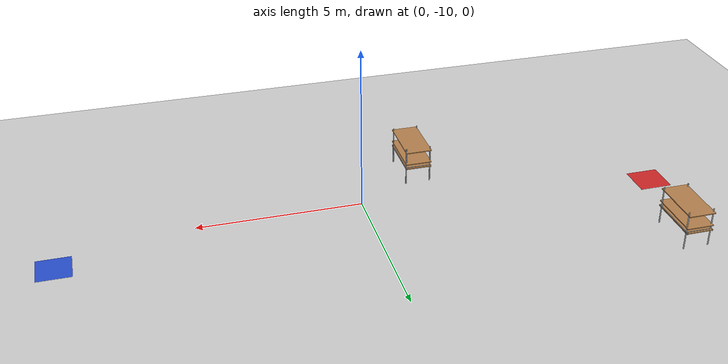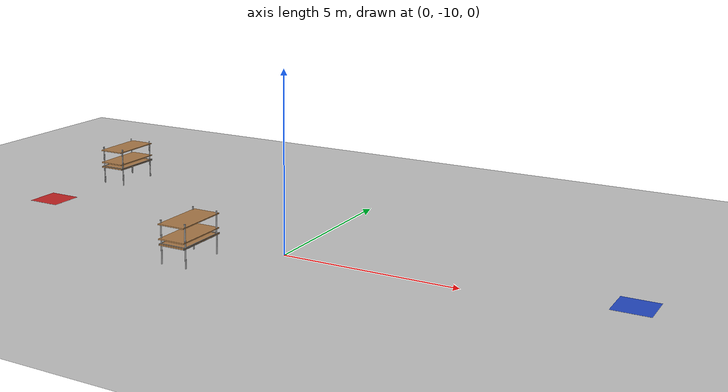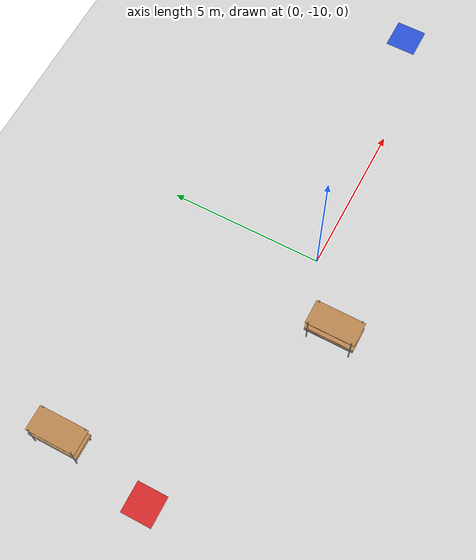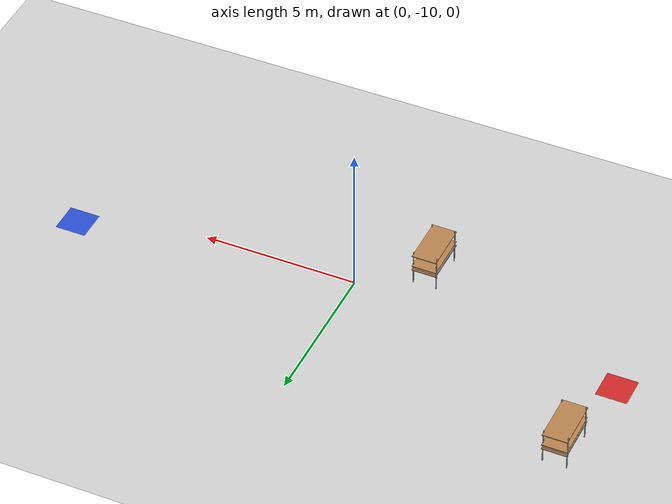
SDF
<sdf version="1.7">
 <world name="default">
  <model name="ground_plane">
   <static>1</static>
   <link name="link">
    <collision name="collision">
     <geometry><plane><normal>0 0 1</normal><size>100 100</size></plane></geometry>
     <surface>
      <contact><collide_bitmask>65535</collide_bitmask></contact>
      <friction><ode><mu>100</mu><mu2>50</mu2></ode></friction>
     </surface>
    </collision>
    <visual name="visual">
     <cast_shadows>0</cast_shadows>
     <geometry><plane><normal>0 0 1</normal><size>100 100</size></plane></geometry>
     <material>
      <script><uri>file://media/materials/scripts/gazebo.material</uri><name>Gazebo/Grey</name></script>
     </material>
    </visual>
   </link>
  </model>
  <model name="destination_3">
   <link name="link">
    <inertial>
     <mass>0.1</mass>
     <inertia>
      <ixx>0.166667</ixx>
      <ixy>0</ixy>
      <ixz>0</ixz>
      <iyy>0.166667</iyy>
      <iyz>0</iyz>
      <izz>0.166667</izz>
     </inertia>
    </inertial>
    <visual name="visual">
     <geometry><box><size>1 1 0.001</size></box></geometry>
     <material>
      <script><name>Gazebo/Blue</name><uri>file://media/materials/scripts/gazebo.material</uri></script>
      <shader type="vertex"><normal_map>__default__</normal_map></shader>
     </material>
    </visual>
    <collision name="collision">
     <geometry><box><size>1 1 0</size></box></geometry>
     <surface>
      <friction>
       <ode><mu>0.998</mu><mu2>0.998</mu2><fdir1>0 0 0</fdir1><slip1>0</slip1><slip2>0</slip2></ode>
      </friction>
      <bounce><restitution_coefficient>0</restitution_coefficient><threshold>100000</threshold></bounce>
      <contact>
       <ode>
        <soft_cfm>0</soft_cfm>
        <soft_erp>0.2</soft_erp>
        <kp>100000</kp>
        <kd>1</kd>
        <max_vel>100</max_vel>
        <min_depth>0.001</min_depth>
       </ode>
      </contact>
     </surface>
    </collision>
   </link>
   <static>1</static>
   <pose>9 -9 0 0 -0 0</pose>
  </model>
  <model name="destination_4">
   <link name="link">
    <inertial>
     <mass>0.1</mass>
     <inertia>
      <ixx>0.166667</ixx>
      <ixy>0</ixy>
      <ixz>0</ixz>
      <iyy>0.166667</iyy>
      <iyz>0</iyz>
      <izz>0.166667</izz>
     </inertia>
    </inertial>
    <visual name="visual">
     <geometry><box><size>1 1 0.001</size></box></geometry>
     <material>
      <script><name>Gazebo/Red</name><uri>file://media/materials/scripts/gazebo.material</uri></script>
      <shader type="vertex"><normal_map>__default__</normal_map></shader>
     </material>
    </visual>
    <collision name="collision">
     <geometry><box><size>1 1 0</size></box></geometry>
     <surface>
      <friction>
       <ode><mu>0.998</mu><mu2>0.998</mu2><fdir1>0 0 0</fdir1><slip1>0</slip1><slip2>0</slip2></ode>
      </friction>
      <bounce><restitution_coefficient>0</restitution_coefficient><threshold>100000</threshold></bounce>
      <contact>
       <ode>
        <soft_cfm>0</soft_cfm>
        <soft_erp>0.2</soft_erp>
        <kp>100000</kp>
        <kd>1</kd>
        <max_vel>100</max_vel>
        <min_depth>0.001</min_depth>
       </ode>
      </contact>
     </surface>
    </collision>
   </link>
   <static>1</static>
   <pose>-9 -9 0 0 -0 0</pose>
  </model>
  <model name="pallet_set6_clone_2">
   <link name="warehouse_pallet::warehouse_pallet::link">
    <pose>0 0 0 0 -0 1.57</pose>
    <inertial>
     <inertia>
      <ixx>0.0267042</ixx>
      <ixy>0</ixy>
      <ixz>0</ixz>
      <iyy>0.0937875</iyy>
      <iyz>0</iyz>
      <izz>0.120417</izz>
     </inertia>
     <mass>0.1</mass>
    </inertial>
    <visual name="front_left_leg">
     <pose>0.7 0.38 0.5 0 -0 0</pose>
     <geometry><cylinder><radius>0.02</radius><length>1.2</length></cylinder></geometry>
     <material>
      <script><uri>file://media/materials/scripts/gazebo.material</uri><name>Gazebo/Grey</name></script>
      <shader type="pixel"><normal_map>__default__</normal_map></shader>
      <ambient>0.3 0.3 0.3 1</ambient>
      <diffuse>0.7 0.7 0.7 1</diffuse>
      <specular>0.01 0.01 0.01 1</specular>
      <emissive>0 0 0 1</emissive>
     </material>
    </visual>
    <visual name="visual1">
     <pose>0 0 0.45 0 -0 0</pose>
     <geometry><box><size>1.6 0.8 0.03</size></box></geometry>
     <material>
      <script><uri>file://media/materials/scripts/gazebo.material</uri><name>Gazebo/Wood</name></script>
      <shader type="pixel"><normal_map>__default__</normal_map></shader>
      <ambient>1 1 1 1</ambient>
      <diffuse>1 1 1 1</diffuse>
      <specular>0.2 0.2 0.2 1</specular>
      <emissive>0 0 0 1</emissive>
     </material>
    </visual>
    <visual name="holding2_visual">
     <pose>0 -0.39 0.45 0 -0 0</pose>
     <geometry><box><size>1.6 0.02 0.05</size></box></geometry>
     <material>
      <script><uri>file://media/materials/scripts/gazebo.material</uri><name>Gazebo/Grey</name></script>
      <shader type="pixel"><normal_map>__default__</normal_map></shader>
      <ambient>0.3 0.3 0.3 1</ambient>
      <diffuse>0.7 0.7 0.7 1</diffuse>
      <specular>0.01 0.01 0.01 1</specular>
      <emissive>0 0 0 1</emissive>
     </material>
    </visual>
    <visual name="holding3_visual">
     <pose>0.735 0 0.45 0 -0 1.57</pose>
     <geometry><box><size>0.8 0.02 0.05</size></box></geometry>
     <material>
      <script><uri>file://media/materials/scripts/gazebo.material</uri><name>Gazebo/Grey</name></script>
      <shader type="pixel"><normal_map>__default__</normal_map></shader>
      <ambient>0.3 0.3 0.3 1</ambient>
      <diffuse>0.7 0.7 0.7 1</diffuse>
      <specular>0.01 0.01 0.01 1</specular>
      <emissive>0 0 0 1</emissive>
     </material>
    </visual>
    <visual name="holding4_visual">
     <pose>-0.735 0 0.45 0 -0 1.57</pose>
     <geometry><box><size>0.8 0.02 0.05</size></box></geometry>
     <material>
      <script><uri>file://media/materials/scripts/gazebo.material</uri><name>Gazebo/Grey</name></script>
      <shader type="pixel"><normal_map>__default__</normal_map></shader>
      <ambient>0.3 0.3 0.3 1</ambient>
      <diffuse>0.7 0.7 0.7 1</diffuse>
      <specular>0.01 0.01 0.01 1</specular>
      <emissive>0 0 0 1</emissive>
     </material>
    </visual>
    <visual name="visual2">
     <pose>0 0 0.6 0 -0 0</pose>
     <geometry><box><size>1.6 0.8 0.03</size></box></geometry>
     <material>
      <script><uri>file://media/materials/scripts/gazebo.material</uri><name>Gazebo/Wood</name></script>
      <shader type="pixel"><normal_map>__default__</normal_map></shader>
      <ambient>1 1 1 1</ambient>
      <diffuse>1 1 1 1</diffuse>
      <specular>0.2 0.2 0.2 1</specular>
      <emissive>0 0 0 1</emissive>
     </material>
    </visual>
    <visual name="visual3">
     <pose>0 0 1 0 -0 0</pose>
     <geometry><box><size>1.6 0.8 0.03</size></box></geometry>
     <material>
      <script><uri>file://media/materials/scripts/gazebo.material</uri><name>Gazebo/Wood</name></script>
      <shader type="pixel"><normal_map>__default__</normal_map></shader>
      <ambient>1 1 1 1</ambient>
      <diffuse>1 1 1 1</diffuse>
      <specular>0.2 0.2 0.2 1</specular>
      <emissive>0 0 0 1</emissive>
     </material>
    </visual>
    <visual name="holding1_visual">
     <pose>0 0.39 0.45 0 -0 0</pose>
     <geometry><box><size>1.6 0.02 0.05</size></box></geometry>
     <material>
      <script><uri>file://media/materials/scripts/gazebo.material</uri><name>Gazebo/Grey</name></script>
      <shader type="pixel"><normal_map>__default__</normal_map></shader>
      <ambient>0.3 0.3 0.3 1</ambient>
      <diffuse>0.7 0.7 0.7 1</diffuse>
      <specular>0.01 0.01 0.01 1</specular>
      <emissive>0 0 0 1</emissive>
     </material>
    </visual>
    <visual name="back_right_leg">
     <pose>-0.7 -0.38 0.5 0 -0 0</pose>
     <geometry><cylinder><radius>0.02</radius><length>1.2</length></cylinder></geometry>
     <material>
      <script><uri>file://media/materials/scripts/gazebo.material</uri><name>Gazebo/Grey</name></script>
      <shader type="pixel"><normal_map>__default__</normal_map></shader>
      <ambient>0.3 0.3 0.3 1</ambient>
      <diffuse>0.7 0.7 0.7 1</diffuse>
      <specular>0.01 0.01 0.01 1</specular>
      <emissive>0 0 0 1</emissive>
     </material>
    </visual>
    <visual name="back_left_leg">
     <pose>-0.7 0.38 0.5 0 -0 0</pose>
     <geometry><cylinder><radius>0.02</radius><length>1.2</length></cylinder></geometry>
     <material>
      <script><uri>file://media/materials/scripts/gazebo.material</uri><name>Gazebo/Grey</name></script>
      <shader type="pixel"><normal_map>__default__</normal_map></shader>
      <ambient>0.3 0.3 0.3 1</ambient>
      <diffuse>0.7 0.7 0.7 1</diffuse>
      <specular>0.01 0.01 0.01 1</specular>
      <emissive>0 0 0 1</emissive>
     </material>
    </visual>
    <visual name="front_right_leg">
     <pose>0.7 -0.38 0.5 0 -0 0</pose>
     <geometry><cylinder><radius>0.02</radius><length>1.2</length></cylinder></geometry>
     <material>
      <script><uri>file://media/materials/scripts/gazebo.material</uri><name>Gazebo/Grey</name></script>
      <shader type="pixel"><normal_map>__default__</normal_map></shader>
      <ambient>0.3 0.3 0.3 1</ambient>
      <diffuse>0.7 0.7 0.7 1</diffuse>
      <specular>0.01 0.01 0.01 1</specular>
      <emissive>0 0 0 1</emissive>
     </material>
    </visual>
    <collision name="surface1">
     <pose>0 0 0.45 0 -0 0</pose>
     <geometry><box><size>1.6 0.8 0.03</size></box></geometry>
     <surface>
      <friction>
       <ode><mu>20</mu><mu2>20</mu2><fdir1>0 0 0</fdir1><slip1>0</slip1><slip2>0</slip2></ode>
       <torsional>
        <coefficient>1</coefficient>
        <patch_radius>0</patch_radius>
        <surface_radius>0</surface_radius>
        <use_patch_radius>1</use_patch_radius>
        <ode><slip>0</slip></ode>
       </torsional>
      </friction>
      <bounce><restitution_coefficient>0</restitution_coefficient><threshold>1e+06</threshold></bounce>
      <contact>
       <collide_without_contact>0</collide_without_contact>
       <collide_without_contact_bitmask>1</collide_without_contact_bitmask>
       <collide_bitmask>1</collide_bitmask>
       <ode>
        <soft_cfm>0</soft_cfm>
        <soft_erp>0.2</soft_erp>
        <kp>1e+13</kp>
        <kd>1</kd>
        <max_vel>0.01</max_vel>
        <min_depth>0</min_depth>
       </ode>
       <bullet>
        <split_impulse>1</split_impulse>
        <split_impulse_penetration_threshold>-0.01</split_impulse_penetration_threshold>
        <soft_cfm>0</soft_cfm>
        <soft_erp>0.2</soft_erp>
        <kp>1e+13</kp>
        <kd>1</kd>
       </bullet>
      </contact>
     </surface>
    </collision>
    <collision name="holding2_collision">
     <pose>0 -0.39 0.45 0 -0 0</pose>
     <geometry><box><size>1.6 0.02 0.05</size></box></geometry>
     <surface>
      <friction>
       <ode><mu>1e+09</mu><mu2>1e+09</mu2><fdir1>0 0 0</fdir1><slip1>0</slip1><slip2>0</slip2></ode>
       <torsional>
        <coefficient>1</coefficient>
        <patch_radius>0</patch_radius>
        <surface_radius>0</surface_radius>
        <use_patch_radius>1</use_patch_radius>
        <ode><slip>0</slip></ode>
       </torsional>
      </friction>
      <bounce><restitution_coefficient>0</restitution_coefficient><threshold>1e+06</threshold></bounce>
      <contact>
       <collide_without_contact>0</collide_without_contact>
       <collide_without_contact_bitmask>1</collide_without_contact_bitmask>
       <collide_bitmask>1</collide_bitmask>
       <ode>
        <soft_cfm>0</soft_cfm>
        <soft_erp>0.2</soft_erp>
        <kp>1e+13</kp>
        <kd>1</kd>
        <max_vel>0.01</max_vel>
        <min_depth>0</min_depth>
       </ode>
       <bullet>
        <split_impulse>1</split_impulse>
        <split_impulse_penetration_threshold>-0.01</split_impulse_penetration_threshold>
        <soft_cfm>0</soft_cfm>
        <soft_erp>0.2</soft_erp>
        <kp>1e+13</kp>
        <kd>1</kd>
       </bullet>
      </contact>
     </surface>
    </collision>
    <collision name="holding1_collision">
     <pose>0 0.39 0.45 0 -0 0</pose>
     <geometry><box><size>1.6 0.02 0.05</size></box></geometry>
     <surface>
      <friction>
       <ode><mu>1e+09</mu><mu2>1e+09</mu2><fdir1>0 0 0</fdir1><slip1>0</slip1><slip2>0</slip2></ode>
       <torsional>
        <coefficient>1</coefficient>
        <patch_radius>0</patch_radius>
        <surface_radius>0</surface_radius>
        <use_patch_radius>1</use_patch_radius>
        <ode><slip>0</slip></ode>
       </torsional>
      </friction>
      <bounce><restitution_coefficient>0</restitution_coefficient><threshold>1e+06</threshold></bounce>
      <contact>
       <collide_without_contact>0</collide_without_contact>
       <collide_without_contact_bitmask>1</collide_without_contact_bitmask>
       <collide_bitmask>1</collide_bitmask>
       <ode>
        <soft_cfm>0</soft_cfm>
        <soft_erp>0.2</soft_erp>
        <kp>1e+13</kp>
        <kd>1</kd>
        <max_vel>0.01</max_vel>
        <min_depth>0</min_depth>
       </ode>
       <bullet>
        <split_impulse>1</split_impulse>
        <split_impulse_penetration_threshold>-0.01</split_impulse_penetration_threshold>
        <soft_cfm>0</soft_cfm>
        <soft_erp>0.2</soft_erp>
        <kp>1e+13</kp>
        <kd>1</kd>
       </bullet>
      </contact>
     </surface>
    </collision>
    <collision name="holding3_collision">
     <pose>0.735 0 0.45 0 -0 1.57</pose>
     <geometry><box><size>0.8 0.02 0.05</size></box></geometry>
     <surface>
      <friction>
       <ode><mu>1e+09</mu><mu2>1e+09</mu2><fdir1>0 0 0</fdir1><slip1>0</slip1><slip2>0</slip2></ode>
       <torsional>
        <coefficient>1</coefficient>
        <patch_radius>0</patch_radius>
        <surface_radius>0</surface_radius>
        <use_patch_radius>1</use_patch_radius>
        <ode><slip>0</slip></ode>
       </torsional>
      </friction>
      <bounce><restitution_coefficient>0</restitution_coefficient><threshold>1e+06</threshold></bounce>
      <contact>
       <collide_without_contact>0</collide_without_contact>
       <collide_without_contact_bitmask>1</collide_without_contact_bitmask>
       <collide_bitmask>1</collide_bitmask>
       <ode>
        <soft_cfm>0</soft_cfm>
        <soft_erp>0.2</soft_erp>
        <kp>1e+13</kp>
        <kd>1</kd>
        <max_vel>0.01</max_vel>
        <min_depth>0</min_depth>
       </ode>
       <bullet>
        <split_impulse>1</split_impulse>
        <split_impulse_penetration_threshold>-0.01</split_impulse_penetration_threshold>
        <soft_cfm>0</soft_cfm>
        <soft_erp>0.2</soft_erp>
        <kp>1e+13</kp>
        <kd>1</kd>
       </bullet>
      </contact>
     </surface>
    </collision>
    <collision name="surface3">
     <pose>0 0 1 0 -0 0</pose>
     <geometry><box><size>1.6 0.8 0.03</size></box></geometry>
     <surface>
      <friction>
       <ode><mu>2.5</mu><mu2>2.5</mu2><fdir1>0 0 0</fdir1><slip1>0</slip1><slip2>0</slip2></ode>
       <torsional>
        <coefficient>1</coefficient>
        <patch_radius>0</patch_radius>
        <surface_radius>0</surface_radius>
        <use_patch_radius>1</use_patch_radius>
        <ode><slip>0</slip></ode>
       </torsional>
      </friction>
      <bounce><restitution_coefficient>0</restitution_coefficient><threshold>1e+06</threshold></bounce>
      <contact>
       <collide_without_contact>0</collide_without_contact>
       <collide_without_contact_bitmask>1</collide_without_contact_bitmask>
       <collide_bitmask>1</collide_bitmask>
       <ode>
        <soft_cfm>0</soft_cfm>
        <soft_erp>0.2</soft_erp>
        <kp>1e+13</kp>
        <kd>1</kd>
        <max_vel>0.01</max_vel>
        <min_depth>0</min_depth>
       </ode>
       <bullet>
        <split_impulse>1</split_impulse>
        <split_impulse_penetration_threshold>-0.01</split_impulse_penetration_threshold>
        <soft_cfm>0</soft_cfm>
        <soft_erp>0.2</soft_erp>
        <kp>1e+13</kp>
        <kd>1</kd>
       </bullet>
      </contact>
     </surface>
    </collision>
    <collision name="holding4_collision">
     <pose>-0.735 0 0.45 0 -0 1.57</pose>
     <geometry><box><size>0.8 0.02 0.05</size></box></geometry>
     <surface>
      <friction>
       <ode><mu>1e+09</mu><mu2>1e+09</mu2><fdir1>0 0 0</fdir1><slip1>0</slip1><slip2>0</slip2></ode>
       <torsional>
        <coefficient>1</coefficient>
        <patch_radius>0</patch_radius>
        <surface_radius>0</surface_radius>
        <use_patch_radius>1</use_patch_radius>
        <ode><slip>0</slip></ode>
       </torsional>
      </friction>
      <bounce><restitution_coefficient>0</restitution_coefficient><threshold>1e+06</threshold></bounce>
      <contact>
       <collide_without_contact>0</collide_without_contact>
       <collide_without_contact_bitmask>1</collide_without_contact_bitmask>
       <collide_bitmask>1</collide_bitmask>
       <ode>
        <soft_cfm>0</soft_cfm>
        <soft_erp>0.2</soft_erp>
        <kp>1e+13</kp>
        <kd>1</kd>
        <max_vel>0.01</max_vel>
        <min_depth>0</min_depth>
       </ode>
       <bullet>
        <split_impulse>1</split_impulse>
        <split_impulse_penetration_threshold>-0.01</split_impulse_penetration_threshold>
        <soft_cfm>0</soft_cfm>
        <soft_erp>0.2</soft_erp>
        <kp>1e+13</kp>
        <kd>1</kd>
       </bullet>
      </contact>
     </surface>
    </collision>
    <collision name="surface2">
     <pose>0 0 0.6 0 -0 0</pose>
     <geometry><box><size>1.6 0.8 0.03</size></box></geometry>
     <surface>
      <friction>
       <ode><mu>2.5</mu><mu2>2.5</mu2><fdir1>0 0 0</fdir1><slip1>0</slip1><slip2>0</slip2></ode>
       <torsional>
        <coefficient>1</coefficient>
        <patch_radius>0</patch_radius>
        <surface_radius>0</surface_radius>
        <use_patch_radius>1</use_patch_radius>
        <ode><slip>0</slip></ode>
       </torsional>
      </friction>
      <bounce><restitution_coefficient>0</restitution_coefficient><threshold>1e+06</threshold></bounce>
      <contact>
       <collide_without_contact>0</collide_without_contact>
       <collide_without_contact_bitmask>1</collide_without_contact_bitmask>
       <collide_bitmask>1</collide_bitmask>
       <ode>
        <soft_cfm>0</soft_cfm>
        <soft_erp>0.2</soft_erp>
        <kp>1e+13</kp>
        <kd>1</kd>
        <max_vel>0.01</max_vel>
        <min_depth>0</min_depth>
       </ode>
       <bullet>
        <split_impulse>1</split_impulse>
        <split_impulse_penetration_threshold>-0.01</split_impulse_penetration_threshold>
        <soft_cfm>0</soft_cfm>
        <soft_erp>0.2</soft_erp>
        <kp>1e+13</kp>
        <kd>1</kd>
       </bullet>
      </contact>
     </surface>
    </collision>
    <collision name="front_right_leg">
     <pose>0.7 -0.38 0.5 0 -0 0</pose>
     <geometry><cylinder><radius>0.02</radius><length>1</length></cylinder></geometry>
     <surface>
      <friction>
       <ode><mu>0.1</mu><mu2>0.1</mu2><fdir1>0 0 0</fdir1><slip1>0</slip1><slip2>0</slip2></ode>
       <torsional>
        <coefficient>1</coefficient>
        <patch_radius>0</patch_radius>
        <surface_radius>0</surface_radius>
        <use_patch_radius>1</use_patch_radius>
        <ode><slip>0</slip></ode>
       </torsional>
      </friction>
      <bounce><restitution_coefficient>0</restitution_coefficient><threshold>1e+06</threshold></bounce>
      <contact>
       <collide_without_contact>0</collide_without_contact>
       <collide_without_contact_bitmask>1</collide_without_contact_bitmask>
       <collide_bitmask>1</collide_bitmask>
       <ode>
        <soft_cfm>0</soft_cfm>
        <soft_erp>0.2</soft_erp>
        <kp>1e+13</kp>
        <kd>1</kd>
        <max_vel>0.01</max_vel>
        <min_depth>0</min_depth>
       </ode>
       <bullet>
        <split_impulse>1</split_impulse>
        <split_impulse_penetration_threshold>-0.01</split_impulse_penetration_threshold>
        <soft_cfm>0</soft_cfm>
        <soft_erp>0.2</soft_erp>
        <kp>1e+13</kp>
        <kd>1</kd>
       </bullet>
      </contact>
     </surface>
    </collision>
    <collision name="back_right_leg">
     <pose>-0.7 -0.38 0.5 0 -0 0</pose>
     <geometry><cylinder><radius>0.02</radius><length>1.2</length></cylinder></geometry>
     <surface>
      <friction>
       <ode><mu>0.1</mu><mu2>0.1</mu2><fdir1>0 0 0</fdir1><slip1>0</slip1><slip2>0</slip2></ode>
       <torsional>
        <coefficient>1</coefficient>
        <patch_radius>0</patch_radius>
        <surface_radius>0</surface_radius>
        <use_patch_radius>1</use_patch_radius>
        <ode><slip>0</slip></ode>
       </torsional>
      </friction>
      <bounce><restitution_coefficient>0</restitution_coefficient><threshold>1e+06</threshold></bounce>
      <contact>
       <collide_without_contact>0</collide_without_contact>
       <collide_without_contact_bitmask>1</collide_without_contact_bitmask>
       <collide_bitmask>1</collide_bitmask>
       <ode>
        <soft_cfm>0</soft_cfm>
        <soft_erp>0.2</soft_erp>
        <kp>1e+13</kp>
        <kd>1</kd>
        <max_vel>0.01</max_vel>
        <min_depth>0</min_depth>
       </ode>
       <bullet>
        <split_impulse>1</split_impulse>
        <split_impulse_penetration_threshold>-0.01</split_impulse_penetration_threshold>
        <soft_cfm>0</soft_cfm>
        <soft_erp>0.2</soft_erp>
        <kp>1e+13</kp>
        <kd>1</kd>
       </bullet>
      </contact>
     </surface>
    </collision>
    <collision name="front_left_leg">
     <pose>0.7 0.38 0.5 0 -0 0</pose>
     <geometry><cylinder><radius>0.02</radius><length>1.2</length></cylinder></geometry>
     <surface>
      <friction>
       <ode><mu>0.1</mu><mu2>0.1</mu2><fdir1>0 0 0</fdir1><slip1>0</slip1><slip2>0</slip2></ode>
       <torsional>
        <coefficient>1</coefficient>
        <patch_radius>0</patch_radius>
        <surface_radius>0</surface_radius>
        <use_patch_radius>1</use_patch_radius>
        <ode><slip>0</slip></ode>
       </torsional>
      </friction>
      <bounce><restitution_coefficient>0</restitution_coefficient><threshold>1e+06</threshold></bounce>
      <contact>
       <collide_without_contact>0</collide_without_contact>
       <collide_without_contact_bitmask>1</collide_without_contact_bitmask>
       <collide_bitmask>1</collide_bitmask>
       <ode>
        <soft_cfm>0</soft_cfm>
        <soft_erp>0.2</soft_erp>
        <kp>1e+13</kp>
        <kd>1</kd>
        <max_vel>0.01</max_vel>
        <min_depth>0</min_depth>
       </ode>
       <bullet>
        <split_impulse>1</split_impulse>
        <split_impulse_penetration_threshold>-0.01</split_impulse_penetration_threshold>
        <soft_cfm>0</soft_cfm>
        <soft_erp>0.2</soft_erp>
        <kp>1e+13</kp>
        <kd>1</kd>
       </bullet>
      </contact>
     </surface>
    </collision>
    <collision name="back_left_leg">
     <pose>-0.7 0.38 0.5 0 -0 0</pose>
     <geometry><cylinder><radius>0.02</radius><length>1.2</length></cylinder></geometry>
     <surface>
      <friction>
       <ode><mu>0.1</mu><mu2>0.1</mu2><fdir1>0 0 0</fdir1><slip1>0</slip1><slip2>0</slip2></ode>
       <torsional>
        <coefficient>1</coefficient>
        <patch_radius>0</patch_radius>
        <surface_radius>0</surface_radius>
        <use_patch_radius>1</use_patch_radius>
        <ode><slip>0</slip></ode>
       </torsional>
      </friction>
      <bounce><restitution_coefficient>0</restitution_coefficient><threshold>1e+06</threshold></bounce>
      <contact>
       <collide_without_contact>0</collide_without_contact>
       <collide_without_contact_bitmask>1</collide_without_contact_bitmask>
       <collide_bitmask>1</collide_bitmask>
       <ode>
        <soft_cfm>0</soft_cfm>
        <soft_erp>0.2</soft_erp>
        <kp>1e+13</kp>
        <kd>1</kd>
        <max_vel>0.01</max_vel>
        <min_depth>0</min_depth>
       </ode>
       <bullet>
        <split_impulse>1</split_impulse>
        <split_impulse_penetration_threshold>-0.01</split_impulse_penetration_threshold>
        <soft_cfm>0</soft_cfm>
        <soft_erp>0.2</soft_erp>
        <kp>1e+13</kp>
        <kd>1</kd>
       </bullet>
      </contact>
     </surface>
    </collision>
   </link>
   <static>1</static>
   <pose>-1.99997 -11.5 0.099305 -0.000174 0.000322 -0</pose>
  </model>
  <model name="pallet_set0_clone_0">
   <link name="warehouse_pallet::warehouse_pallet::link">
    <pose>0 0 0 0 -0 1.57</pose>
    <inertial>
     <inertia>
      <ixx>0.0267042</ixx>
      <ixy>0</ixy>
      <ixz>0</ixz>
      <iyy>0.0937875</iyy>
      <iyz>0</iyz>
      <izz>0.120417</izz>
     </inertia>
     <mass>0.1</mass>
    </inertial>
    <visual name="back_left_leg">
     <pose>-0.7 0.38 0.5 0 -0 0</pose>
     <geometry><cylinder><radius>0.02</radius><length>1.2</length></cylinder></geometry>
     <material>
      <script><uri>file://media/materials/scripts/gazebo.material</uri><name>Gazebo/Grey</name></script>
      <shader type="pixel"><normal_map>__default__</normal_map></shader>
      <ambient>0.3 0.3 0.3 1</ambient>
      <diffuse>0.7 0.7 0.7 1</diffuse>
      <specular>0.01 0.01 0.01 1</specular>
      <emissive>0 0 0 1</emissive>
     </material>
    </visual>
    <visual name="holding2_visual">
     <pose>0 -0.39 0.45 0 -0 0</pose>
     <geometry><box><size>1.6 0.02 0.05</size></box></geometry>
     <material>
      <script><uri>file://media/materials/scripts/gazebo.material</uri><name>Gazebo/Grey</name></script>
      <shader type="pixel"><normal_map>__default__</normal_map></shader>
      <ambient>0.3 0.3 0.3 1</ambient>
      <diffuse>0.7 0.7 0.7 1</diffuse>
      <specular>0.01 0.01 0.01 1</specular>
      <emissive>0 0 0 1</emissive>
     </material>
    </visual>
    <visual name="visual1">
     <pose>0 0 0.45 0 -0 0</pose>
     <geometry><box><size>1.6 0.8 0.03</size></box></geometry>
     <material>
      <script><uri>file://media/materials/scripts/gazebo.material</uri><name>Gazebo/Wood</name></script>
      <shader type="pixel"><normal_map>__default__</normal_map></shader>
      <ambient>1 1 1 1</ambient>
      <diffuse>1 1 1 1</diffuse>
      <specular>0.2 0.2 0.2 1</specular>
      <emissive>0 0 0 1</emissive>
     </material>
    </visual>
    <visual name="holding3_visual">
     <pose>0.735 0 0.45 0 -0 1.57</pose>
     <geometry><box><size>0.8 0.02 0.05</size></box></geometry>
     <material>
      <script><uri>file://media/materials/scripts/gazebo.material</uri><name>Gazebo/Grey</name></script>
      <shader type="pixel"><normal_map>__default__</normal_map></shader>
      <ambient>0.3 0.3 0.3 1</ambient>
      <diffuse>0.7 0.7 0.7 1</diffuse>
      <specular>0.01 0.01 0.01 1</specular>
      <emissive>0 0 0 1</emissive>
     </material>
    </visual>
    <visual name="holding4_visual">
     <pose>-0.735 0 0.45 0 -0 1.57</pose>
     <geometry><box><size>0.8 0.02 0.05</size></box></geometry>
     <material>
      <script><uri>file://media/materials/scripts/gazebo.material</uri><name>Gazebo/Grey</name></script>
      <shader type="pixel"><normal_map>__default__</normal_map></shader>
      <ambient>0.3 0.3 0.3 1</ambient>
      <diffuse>0.7 0.7 0.7 1</diffuse>
      <specular>0.01 0.01 0.01 1</specular>
      <emissive>0 0 0 1</emissive>
     </material>
    </visual>
    <visual name="visual2">
     <pose>0 0 0.6 0 -0 0</pose>
     <geometry><box><size>1.6 0.8 0.03</size></box></geometry>
     <material>
      <script><uri>file://media/materials/scripts/gazebo.material</uri><name>Gazebo/Wood</name></script>
      <shader type="pixel"><normal_map>__default__</normal_map></shader>
      <ambient>1 1 1 1</ambient>
      <diffuse>1 1 1 1</diffuse>
      <specular>0.2 0.2 0.2 1</specular>
      <emissive>0 0 0 1</emissive>
     </material>
    </visual>
    <visual name="visual3">
     <pose>0 0 1 0 -0 0</pose>
     <geometry><box><size>1.6 0.8 0.03</size></box></geometry>
     <material>
      <script><uri>file://media/materials/scripts/gazebo.material</uri><name>Gazebo/Wood</name></script>
      <shader type="pixel"><normal_map>__default__</normal_map></shader>
      <ambient>1 1 1 1</ambient>
      <diffuse>1 1 1 1</diffuse>
      <specular>0.2 0.2 0.2 1</specular>
      <emissive>0 0 0 1</emissive>
     </material>
    </visual>
    <visual name="front_right_leg">
     <pose>0.7 -0.38 0.5 0 -0 0</pose>
     <geometry><cylinder><radius>0.02</radius><length>1.2</length></cylinder></geometry>
     <material>
      <script><uri>file://media/materials/scripts/gazebo.material</uri><name>Gazebo/Grey</name></script>
      <shader type="pixel"><normal_map>__default__</normal_map></shader>
      <ambient>0.3 0.3 0.3 1</ambient>
      <diffuse>0.7 0.7 0.7 1</diffuse>
      <specular>0.01 0.01 0.01 1</specular>
      <emissive>0 0 0 1</emissive>
     </material>
    </visual>
    <visual name="back_right_leg">
     <pose>-0.7 -0.38 0.5 0 -0 0</pose>
     <geometry><cylinder><radius>0.02</radius><length>1.2</length></cylinder></geometry>
     <material>
      <script><uri>file://media/materials/scripts/gazebo.material</uri><name>Gazebo/Grey</name></script>
      <shader type="pixel"><normal_map>__default__</normal_map></shader>
      <ambient>0.3 0.3 0.3 1</ambient>
      <diffuse>0.7 0.7 0.7 1</diffuse>
      <specular>0.01 0.01 0.01 1</specular>
      <emissive>0 0 0 1</emissive>
     </material>
    </visual>
    <visual name="front_left_leg">
     <pose>0.7 0.38 0.5 0 -0 0</pose>
     <geometry><cylinder><radius>0.02</radius><length>1.2</length></cylinder></geometry>
     <material>
      <script><uri>file://media/materials/scripts/gazebo.material</uri><name>Gazebo/Grey</name></script>
      <shader type="pixel"><normal_map>__default__</normal_map></shader>
      <ambient>0.3 0.3 0.3 1</ambient>
      <diffuse>0.7 0.7 0.7 1</diffuse>
      <specular>0.01 0.01 0.01 1</specular>
      <emissive>0 0 0 1</emissive>
     </material>
    </visual>
    <visual name="holding1_visual">
     <pose>0 0.39 0.45 0 -0 0</pose>
     <geometry><box><size>1.6 0.02 0.05</size></box></geometry>
     <material>
      <script><uri>file://media/materials/scripts/gazebo.material</uri><name>Gazebo/Grey</name></script>
      <shader type="pixel"><normal_map>__default__</normal_map></shader>
      <ambient>0.3 0.3 0.3 1</ambient>
      <diffuse>0.7 0.7 0.7 1</diffuse>
      <specular>0.01 0.01 0.01 1</specular>
      <emissive>0 0 0 1</emissive>
     </material>
    </visual>
    <collision name="surface1">
     <pose>0 0 0.45 0 -0 0</pose>
     <geometry><box><size>1.6 0.8 0.03</size></box></geometry>
     <surface>
      <friction>
       <ode><mu>20</mu><mu2>20</mu2><fdir1>0 0 0</fdir1><slip1>0</slip1><slip2>0</slip2></ode>
       <torsional>
        <coefficient>1</coefficient>
        <patch_radius>0</patch_radius>
        <surface_radius>0</surface_radius>
        <use_patch_radius>1</use_patch_radius>
        <ode><slip>0</slip></ode>
       </torsional>
      </friction>
      <bounce><restitution_coefficient>0</restitution_coefficient><threshold>1e+06</threshold></bounce>
      <contact>
       <collide_without_contact>0</collide_without_contact>
       <collide_without_contact_bitmask>1</collide_without_contact_bitmask>
       <collide_bitmask>1</collide_bitmask>
       <ode>
        <soft_cfm>0</soft_cfm>
        <soft_erp>0.2</soft_erp>
        <kp>1e+13</kp>
        <kd>1</kd>
        <max_vel>0.01</max_vel>
        <min_depth>0</min_depth>
       </ode>
       <bullet>
        <split_impulse>1</split_impulse>
        <split_impulse_penetration_threshold>-0.01</split_impulse_penetration_threshold>
        <soft_cfm>0</soft_cfm>
        <soft_erp>0.2</soft_erp>
        <kp>1e+13</kp>
        <kd>1</kd>
       </bullet>
      </contact>
     </surface>
    </collision>
    <collision name="holding1_collision">
     <pose>0 0.39 0.45 0 -0 0</pose>
     <geometry><box><size>1.6 0.02 0.05</size></box></geometry>
     <surface>
      <friction>
       <ode><mu>1e+09</mu><mu2>1e+09</mu2><fdir1>0 0 0</fdir1><slip1>0</slip1><slip2>0</slip2></ode>
       <torsional>
        <coefficient>1</coefficient>
        <patch_radius>0</patch_radius>
        <surface_radius>0</surface_radius>
        <use_patch_radius>1</use_patch_radius>
        <ode><slip>0</slip></ode>
       </torsional>
      </friction>
      <bounce><restitution_coefficient>0</restitution_coefficient><threshold>1e+06</threshold></bounce>
      <contact>
       <collide_without_contact>0</collide_without_contact>
       <collide_without_contact_bitmask>1</collide_without_contact_bitmask>
       <collide_bitmask>1</collide_bitmask>
       <ode>
        <soft_cfm>0</soft_cfm>
        <soft_erp>0.2</soft_erp>
        <kp>1e+13</kp>
        <kd>1</kd>
        <max_vel>0.01</max_vel>
        <min_depth>0</min_depth>
       </ode>
       <bullet>
        <split_impulse>1</split_impulse>
        <split_impulse_penetration_threshold>-0.01</split_impulse_penetration_threshold>
        <soft_cfm>0</soft_cfm>
        <soft_erp>0.2</soft_erp>
        <kp>1e+13</kp>
        <kd>1</kd>
       </bullet>
      </contact>
     </surface>
    </collision>
    <collision name="holding3_collision">
     <pose>0.735 0 0.45 0 -0 1.57</pose>
     <geometry><box><size>0.8 0.02 0.05</size></box></geometry>
     <surface>
      <friction>
       <ode><mu>1e+09</mu><mu2>1e+09</mu2><fdir1>0 0 0</fdir1><slip1>0</slip1><slip2>0</slip2></ode>
       <torsional>
        <coefficient>1</coefficient>
        <patch_radius>0</patch_radius>
        <surface_radius>0</surface_radius>
        <use_patch_radius>1</use_patch_radius>
        <ode><slip>0</slip></ode>
       </torsional>
      </friction>
      <bounce><restitution_coefficient>0</restitution_coefficient><threshold>1e+06</threshold></bounce>
      <contact>
       <collide_without_contact>0</collide_without_contact>
       <collide_without_contact_bitmask>1</collide_without_contact_bitmask>
       <collide_bitmask>1</collide_bitmask>
       <ode>
        <soft_cfm>0</soft_cfm>
        <soft_erp>0.2</soft_erp>
        <kp>1e+13</kp>
        <kd>1</kd>
        <max_vel>0.01</max_vel>
        <min_depth>0</min_depth>
       </ode>
       <bullet>
        <split_impulse>1</split_impulse>
        <split_impulse_penetration_threshold>-0.01</split_impulse_penetration_threshold>
        <soft_cfm>0</soft_cfm>
        <soft_erp>0.2</soft_erp>
        <kp>1e+13</kp>
        <kd>1</kd>
       </bullet>
      </contact>
     </surface>
    </collision>
    <collision name="holding2_collision">
     <pose>0 -0.39 0.45 0 -0 0</pose>
     <geometry><box><size>1.6 0.02 0.05</size></box></geometry>
     <surface>
      <friction>
       <ode><mu>1e+09</mu><mu2>1e+09</mu2><fdir1>0 0 0</fdir1><slip1>0</slip1><slip2>0</slip2></ode>
       <torsional>
        <coefficient>1</coefficient>
        <patch_radius>0</patch_radius>
        <surface_radius>0</surface_radius>
        <use_patch_radius>1</use_patch_radius>
        <ode><slip>0</slip></ode>
       </torsional>
      </friction>
      <bounce><restitution_coefficient>0</restitution_coefficient><threshold>1e+06</threshold></bounce>
      <contact>
       <collide_without_contact>0</collide_without_contact>
       <collide_without_contact_bitmask>1</collide_without_contact_bitmask>
       <collide_bitmask>1</collide_bitmask>
       <ode>
        <soft_cfm>0</soft_cfm>
        <soft_erp>0.2</soft_erp>
        <kp>1e+13</kp>
        <kd>1</kd>
        <max_vel>0.01</max_vel>
        <min_depth>0</min_depth>
       </ode>
       <bullet>
        <split_impulse>1</split_impulse>
        <split_impulse_penetration_threshold>-0.01</split_impulse_penetration_threshold>
        <soft_cfm>0</soft_cfm>
        <soft_erp>0.2</soft_erp>
        <kp>1e+13</kp>
        <kd>1</kd>
       </bullet>
      </contact>
     </surface>
    </collision>
    <collision name="holding4_collision">
     <pose>-0.735 0 0.45 0 -0 1.57</pose>
     <geometry><box><size>0.8 0.02 0.05</size></box></geometry>
     <surface>
      <friction>
       <ode><mu>1e+09</mu><mu2>1e+09</mu2><fdir1>0 0 0</fdir1><slip1>0</slip1><slip2>0</slip2></ode>
       <torsional>
        <coefficient>1</coefficient>
        <patch_radius>0</patch_radius>
        <surface_radius>0</surface_radius>
        <use_patch_radius>1</use_patch_radius>
        <ode><slip>0</slip></ode>
       </torsional>
      </friction>
      <bounce><restitution_coefficient>0</restitution_coefficient><threshold>1e+06</threshold></bounce>
      <contact>
       <collide_without_contact>0</collide_without_contact>
       <collide_without_contact_bitmask>1</collide_without_contact_bitmask>
       <collide_bitmask>1</collide_bitmask>
       <ode>
        <soft_cfm>0</soft_cfm>
        <soft_erp>0.2</soft_erp>
        <kp>1e+13</kp>
        <kd>1</kd>
        <max_vel>0.01</max_vel>
        <min_depth>0</min_depth>
       </ode>
       <bullet>
        <split_impulse>1</split_impulse>
        <split_impulse_penetration_threshold>-0.01</split_impulse_penetration_threshold>
        <soft_cfm>0</soft_cfm>
        <soft_erp>0.2</soft_erp>
        <kp>1e+13</kp>
        <kd>1</kd>
       </bullet>
      </contact>
     </surface>
    </collision>
    <collision name="surface3">
     <pose>0 0 1 0 -0 0</pose>
     <geometry><box><size>1.6 0.8 0.03</size></box></geometry>
     <surface>
      <friction>
       <ode><mu>2.5</mu><mu2>2.5</mu2><fdir1>0 0 0</fdir1><slip1>0</slip1><slip2>0</slip2></ode>
       <torsional>
        <coefficient>1</coefficient>
        <patch_radius>0</patch_radius>
        <surface_radius>0</surface_radius>
        <use_patch_radius>1</use_patch_radius>
        <ode><slip>0</slip></ode>
       </torsional>
      </friction>
      <bounce><restitution_coefficient>0</restitution_coefficient><threshold>1e+06</threshold></bounce>
      <contact>
       <collide_without_contact>0</collide_without_contact>
       <collide_without_contact_bitmask>1</collide_without_contact_bitmask>
       <collide_bitmask>1</collide_bitmask>
       <ode>
        <soft_cfm>0</soft_cfm>
        <soft_erp>0.2</soft_erp>
        <kp>1e+13</kp>
        <kd>1</kd>
        <max_vel>0.01</max_vel>
        <min_depth>0</min_depth>
       </ode>
       <bullet>
        <split_impulse>1</split_impulse>
        <split_impulse_penetration_threshold>-0.01</split_impulse_penetration_threshold>
        <soft_cfm>0</soft_cfm>
        <soft_erp>0.2</soft_erp>
        <kp>1e+13</kp>
        <kd>1</kd>
       </bullet>
      </contact>
     </surface>
    </collision>
    <collision name="surface2">
     <pose>0 0 0.6 0 -0 0</pose>
     <geometry><box><size>1.6 0.8 0.03</size></box></geometry>
     <surface>
      <friction>
       <ode><mu>2.5</mu><mu2>2.5</mu2><fdir1>0 0 0</fdir1><slip1>0</slip1><slip2>0</slip2></ode>
       <torsional>
        <coefficient>1</coefficient>
        <patch_radius>0</patch_radius>
        <surface_radius>0</surface_radius>
        <use_patch_radius>1</use_patch_radius>
        <ode><slip>0</slip></ode>
       </torsional>
      </friction>
      <bounce><restitution_coefficient>0</restitution_coefficient><threshold>1e+06</threshold></bounce>
      <contact>
       <collide_without_contact>0</collide_without_contact>
       <collide_without_contact_bitmask>1</collide_without_contact_bitmask>
       <collide_bitmask>1</collide_bitmask>
       <ode>
        <soft_cfm>0</soft_cfm>
        <soft_erp>0.2</soft_erp>
        <kp>1e+13</kp>
        <kd>1</kd>
        <max_vel>0.01</max_vel>
        <min_depth>0</min_depth>
       </ode>
       <bullet>
        <split_impulse>1</split_impulse>
        <split_impulse_penetration_threshold>-0.01</split_impulse_penetration_threshold>
        <soft_cfm>0</soft_cfm>
        <soft_erp>0.2</soft_erp>
        <kp>1e+13</kp>
        <kd>1</kd>
       </bullet>
      </contact>
     </surface>
    </collision>
    <collision name="back_right_leg">
     <pose>-0.7 -0.38 0.5 0 -0 0</pose>
     <geometry><cylinder><radius>0.02</radius><length>1.2</length></cylinder></geometry>
     <surface>
      <friction>
       <ode><mu>0.1</mu><mu2>0.1</mu2><fdir1>0 0 0</fdir1><slip1>0</slip1><slip2>0</slip2></ode>
       <torsional>
        <coefficient>1</coefficient>
        <patch_radius>0</patch_radius>
        <surface_radius>0</surface_radius>
        <use_patch_radius>1</use_patch_radius>
        <ode><slip>0</slip></ode>
       </torsional>
      </friction>
      <bounce><restitution_coefficient>0</restitution_coefficient><threshold>1e+06</threshold></bounce>
      <contact>
       <collide_without_contact>0</collide_without_contact>
       <collide_without_contact_bitmask>1</collide_without_contact_bitmask>
       <collide_bitmask>1</collide_bitmask>
       <ode>
        <soft_cfm>0</soft_cfm>
        <soft_erp>0.2</soft_erp>
        <kp>1e+13</kp>
        <kd>1</kd>
        <max_vel>0.01</max_vel>
        <min_depth>0</min_depth>
       </ode>
       <bullet>
        <split_impulse>1</split_impulse>
        <split_impulse_penetration_threshold>-0.01</split_impulse_penetration_threshold>
        <soft_cfm>0</soft_cfm>
        <soft_erp>0.2</soft_erp>
        <kp>1e+13</kp>
        <kd>1</kd>
       </bullet>
      </contact>
     </surface>
    </collision>
    <collision name="front_right_leg">
     <pose>0.7 -0.38 0.5 0 -0 0</pose>
     <geometry><cylinder><radius>0.02</radius><length>1</length></cylinder></geometry>
     <surface>
      <friction>
       <ode><mu>0.1</mu><mu2>0.1</mu2><fdir1>0 0 0</fdir1><slip1>0</slip1><slip2>0</slip2></ode>
       <torsional>
        <coefficient>1</coefficient>
        <patch_radius>0</patch_radius>
        <surface_radius>0</surface_radius>
        <use_patch_radius>1</use_patch_radius>
        <ode><slip>0</slip></ode>
       </torsional>
      </friction>
      <bounce><restitution_coefficient>0</restitution_coefficient><threshold>1e+06</threshold></bounce>
      <contact>
       <collide_without_contact>0</collide_without_contact>
       <collide_without_contact_bitmask>1</collide_without_contact_bitmask>
       <collide_bitmask>1</collide_bitmask>
       <ode>
        <soft_cfm>0</soft_cfm>
        <soft_erp>0.2</soft_erp>
        <kp>1e+13</kp>
        <kd>1</kd>
        <max_vel>0.01</max_vel>
        <min_depth>0</min_depth>
       </ode>
       <bullet>
        <split_impulse>1</split_impulse>
        <split_impulse_penetration_threshold>-0.01</split_impulse_penetration_threshold>
        <soft_cfm>0</soft_cfm>
        <soft_erp>0.2</soft_erp>
        <kp>1e+13</kp>
        <kd>1</kd>
       </bullet>
      </contact>
     </surface>
    </collision>
    <collision name="front_left_leg">
     <pose>0.7 0.38 0.5 0 -0 0</pose>
     <geometry><cylinder><radius>0.02</radius><length>1.2</length></cylinder></geometry>
     <surface>
      <friction>
       <ode><mu>0.1</mu><mu2>0.1</mu2><fdir1>0 0 0</fdir1><slip1>0</slip1><slip2>0</slip2></ode>
       <torsional>
        <coefficient>1</coefficient>
        <patch_radius>0</patch_radius>
        <surface_radius>0</surface_radius>
        <use_patch_radius>1</use_patch_radius>
        <ode><slip>0</slip></ode>
       </torsional>
      </friction>
      <bounce><restitution_coefficient>0</restitution_coefficient><threshold>1e+06</threshold></bounce>
      <contact>
       <collide_without_contact>0</collide_without_contact>
       <collide_without_contact_bitmask>1</collide_without_contact_bitmask>
       <collide_bitmask>1</collide_bitmask>
       <ode>
        <soft_cfm>0</soft_cfm>
        <soft_erp>0.2</soft_erp>
        <kp>1e+13</kp>
        <kd>1</kd>
        <max_vel>0.01</max_vel>
        <min_depth>0</min_depth>
       </ode>
       <bullet>
        <split_impulse>1</split_impulse>
        <split_impulse_penetration_threshold>-0.01</split_impulse_penetration_threshold>
        <soft_cfm>0</soft_cfm>
        <soft_erp>0.2</soft_erp>
        <kp>1e+13</kp>
        <kd>1</kd>
       </bullet>
      </contact>
     </surface>
    </collision>
    <collision name="back_left_leg">
     <pose>-0.7 0.38 0.5 0 -0 0</pose>
     <geometry><cylinder><radius>0.02</radius><length>1.2</length></cylinder></geometry>
     <surface>
      <friction>
       <ode><mu>0.1</mu><mu2>0.1</mu2><fdir1>0 0 0</fdir1><slip1>0</slip1><slip2>0</slip2></ode>
       <torsional>
        <coefficient>1</coefficient>
        <patch_radius>0</patch_radius>
        <surface_radius>0</surface_radius>
        <use_patch_radius>1</use_patch_radius>
        <ode><slip>0</slip></ode>
       </torsional>
      </friction>
      <bounce><restitution_coefficient>0</restitution_coefficient><threshold>1e+06</threshold></bounce>
      <contact>
       <collide_without_contact>0</collide_without_contact>
       <collide_without_contact_bitmask>1</collide_without_contact_bitmask>
       <collide_bitmask>1</collide_bitmask>
       <ode>
        <soft_cfm>0</soft_cfm>
        <soft_erp>0.2</soft_erp>
        <kp>1e+13</kp>
        <kd>1</kd>
        <max_vel>0.01</max_vel>
        <min_depth>0</min_depth>
       </ode>
       <bullet>
        <split_impulse>1</split_impulse>
        <split_impulse_penetration_threshold>-0.01</split_impulse_penetration_threshold>
        <soft_cfm>0</soft_cfm>
        <soft_erp>0.2</soft_erp>
        <kp>1e+13</kp>
        <kd>1</kd>
       </bullet>
      </contact>
     </surface>
    </collision>
   </link>
   <static>1</static>
   <pose>-8.49997 -5.99998 0.099305 -0.000174 0.000322 -0</pose>
  </model>
 </world>
</sdf>
